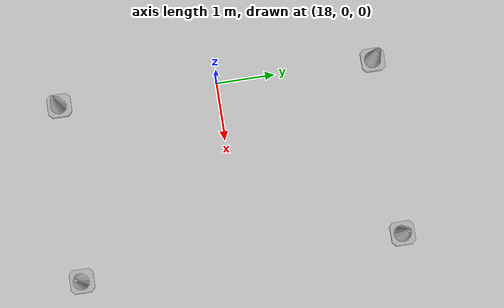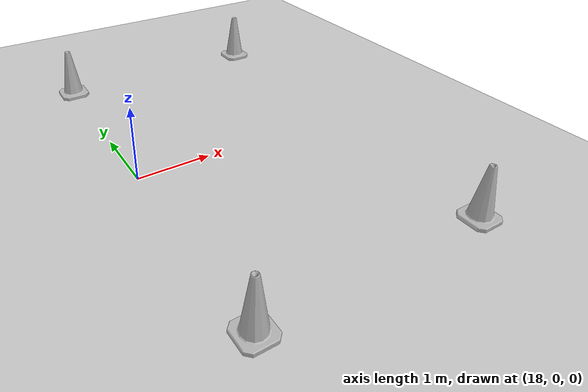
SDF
<sdf version="1.7">
 <world name="default">
  <model name="ground_plane">
   <static>1</static>
   <link name="link">
    <collision name="collision">
     <geometry><plane><normal>0 0 1</normal><size>100 100</size></plane></geometry>
     <surface>
      <contact><collide_bitmask>65535</collide_bitmask></contact>
      <friction><ode><mu>100</mu><mu2>50</mu2></ode></friction>
     </surface>
    </collision>
    <visual name="visual">
     <cast_shadows>0</cast_shadows>
     <geometry><plane><normal>0 0 1</normal><size>100 100</size></plane></geometry>
     <material>
      <script><uri>file://media/materials/scripts/gazebo.material</uri><name>Gazebo/Grey</name></script>
     </material>
    </visual>
   </link>
  </model>
  <model name="Construction_Cone_b_5">
   <link name="link">
    <inertial>
     <inertia><ixx>1</ixx><ixy>0</ixy><ixz>0</ixz><iyy>1</iyy><iyz>0</iyz><izz>1</izz></inertia>
     <mass>1</mass>
    </inertial>
    <visual name="visual">
     <geometry>
      <mesh><scale>8 8 6.7</scale><uri>./construction_cone/meshes/construction_cone_b.dae</uri></mesh>
     </geometry>
     <material><shader type="pixel"/></material>
    </visual>
    <collision name="collision">
     <geometry>
      <mesh><uri>./construction_cone/meshes/construction_cone_b.dae</uri><scale>8 8 6.7</scale></mesh>
     </geometry>
     <surface>
      <friction>
       <ode><mu>1</mu><mu2>1</mu2><fdir1>0 0 0</fdir1><slip1>0</slip1><slip2>0</slip2></ode>
       <torsional>
        <coefficient>1</coefficient>
        <patch_radius>0</patch_radius>
        <surface_radius>0</surface_radius>
        <use_patch_radius>1</use_patch_radius>
        <ode><slip>0</slip></ode>
       </torsional>
      </friction>
      <bounce><restitution_coefficient>0</restitution_coefficient><threshold>1e+06</threshold></bounce>
      <contact>
       <collide_without_contact>0</collide_without_contact>
       <collide_without_contact_bitmask>1</collide_without_contact_bitmask>
       <collide_bitmask>1</collide_bitmask>
       <ode>
        <soft_cfm>0</soft_cfm>
        <soft_erp>0.2</soft_erp>
        <kp>1e+13</kp>
        <kd>1</kd>
        <max_vel>0.01</max_vel>
        <min_depth>0</min_depth>
       </ode>
       <bullet>
        <split_impulse>1</split_impulse>
        <split_impulse_penetration_threshold>-0.01</split_impulse_penetration_threshold>
        <soft_cfm>0</soft_cfm>
        <soft_erp>0.2</soft_erp>
        <kp>1e+13</kp>
        <kd>1</kd>
       </bullet>
      </contact>
     </surface>
    </collision>
   </link>
   <static>0</static>
   <pose>18.0013 -2.70174 -0 0 -0 0</pose>
  </model>
  <model name="Construction_Cone_b_6">
   <link name="link">
    <inertial>
     <inertia><ixx>1</ixx><ixy>0</ixy><ixz>0</ixz><iyy>1</iyy><iyz>0</iyz><izz>1</izz></inertia>
     <mass>1</mass>
    </inertial>
    <visual name="visual">
     <geometry>
      <mesh><scale>8 8 6.7</scale><uri>./construction_cone/meshes/construction_cone_b.dae</uri></mesh>
     </geometry>
     <material><shader type="pixel"/></material>
    </visual>
    <collision name="collision">
     <geometry>
      <mesh><uri>./construction_cone/meshes/construction_cone_b.dae</uri><scale>8 8 6.7</scale></mesh>
     </geometry>
     <surface>
      <friction>
       <ode><mu>1</mu><mu2>1</mu2><fdir1>0 0 0</fdir1><slip1>0</slip1><slip2>0</slip2></ode>
       <torsional>
        <coefficient>1</coefficient>
        <patch_radius>0</patch_radius>
        <surface_radius>0</surface_radius>
        <use_patch_radius>1</use_patch_radius>
        <ode><slip>0</slip></ode>
       </torsional>
      </friction>
      <bounce><restitution_coefficient>0</restitution_coefficient><threshold>1e+06</threshold></bounce>
      <contact>
       <collide_without_contact>0</collide_without_contact>
       <collide_without_contact_bitmask>1</collide_without_contact_bitmask>
       <collide_bitmask>1</collide_bitmask>
       <ode>
        <soft_cfm>0</soft_cfm>
        <soft_erp>0.2</soft_erp>
        <kp>1e+13</kp>
        <kd>1</kd>
        <max_vel>0.01</max_vel>
        <min_depth>0</min_depth>
       </ode>
       <bullet>
        <split_impulse>1</split_impulse>
        <split_impulse_penetration_threshold>-0.01</split_impulse_penetration_threshold>
        <soft_cfm>0</soft_cfm>
        <soft_erp>0.2</soft_erp>
        <kp>1e+13</kp>
        <kd>1</kd>
       </bullet>
      </contact>
     </surface>
    </collision>
   </link>
   <static>0</static>
   <pose>20.9991 -2.7029 -0 0 -0 0</pose>
  </model>
  <model name="Construction_Cone_y_5">
   <link name="link">
    <inertial>
     <inertia><ixx>1</ixx><ixy>0</ixy><ixz>0</ixz><iyy>1</iyy><iyz>0</iyz><izz>1</izz></inertia>
     <mass>1</mass>
    </inertial>
    <visual name="visual">
     <geometry>
      <mesh><scale>8 8 6.7</scale><uri>./construction_cone/meshes/construction_cone_y.dae</uri></mesh>
     </geometry>
     <material><shader type="pixel"/></material>
    </visual>
    <collision name="collision">
     <geometry>
      <mesh><uri>./construction_cone/meshes/construction_cone_y.dae</uri><scale>8 8 6.7</scale></mesh>
     </geometry>
     <surface>
      <friction>
       <ode><mu>1</mu><mu2>1</mu2><fdir1>0 0 0</fdir1><slip1>0</slip1><slip2>0</slip2></ode>
       <torsional>
        <coefficient>1</coefficient>
        <patch_radius>0</patch_radius>
        <surface_radius>0</surface_radius>
        <use_patch_radius>1</use_patch_radius>
        <ode><slip>0</slip></ode>
       </torsional>
      </friction>
      <bounce><restitution_coefficient>0</restitution_coefficient><threshold>1e+06</threshold></bounce>
      <contact>
       <collide_without_contact>0</collide_without_contact>
       <collide_without_contact_bitmask>1</collide_without_contact_bitmask>
       <collide_bitmask>1</collide_bitmask>
       <ode>
        <soft_cfm>0</soft_cfm>
        <soft_erp>0.2</soft_erp>
        <kp>1e+13</kp>
        <kd>1</kd>
        <max_vel>0.01</max_vel>
        <min_depth>0</min_depth>
       </ode>
       <bullet>
        <split_impulse>1</split_impulse>
        <split_impulse_penetration_threshold>-0.01</split_impulse_penetration_threshold>
        <soft_cfm>0</soft_cfm>
        <soft_erp>0.2</soft_erp>
        <kp>1e+13</kp>
        <kd>1</kd>
       </bullet>
      </contact>
     </surface>
    </collision>
   </link>
   <static>0</static>
   <pose>18 2.70166 -0 0 -0 0</pose>
  </model>
  <model name="Construction_Cone_y_6">
   <link name="link">
    <inertial>
     <inertia><ixx>1</ixx><ixy>0</ixy><ixz>0</ixz><iyy>1</iyy><iyz>0</iyz><izz>1</izz></inertia>
     <mass>1</mass>
    </inertial>
    <visual name="visual">
     <geometry>
      <mesh><scale>8 8 6.7</scale><uri>./construction_cone/meshes/construction_cone_y.dae</uri></mesh>
     </geometry>
     <material><shader type="pixel"/></material>
    </visual>
    <collision name="collision">
     <geometry>
      <mesh><uri>./construction_cone/meshes/construction_cone_y.dae</uri><scale>8 8 6.7</scale></mesh>
     </geometry>
     <surface>
      <friction>
       <ode><mu>1</mu><mu2>1</mu2><fdir1>0 0 0</fdir1><slip1>0</slip1><slip2>0</slip2></ode>
       <torsional>
        <coefficient>1</coefficient>
        <patch_radius>0</patch_radius>
        <surface_radius>0</surface_radius>
        <use_patch_radius>1</use_patch_radius>
        <ode><slip>0</slip></ode>
       </torsional>
      </friction>
      <bounce><restitution_coefficient>0</restitution_coefficient><threshold>1e+06</threshold></bounce>
      <contact>
       <collide_without_contact>0</collide_without_contact>
       <collide_without_contact_bitmask>1</collide_without_contact_bitmask>
       <collide_bitmask>1</collide_bitmask>
       <ode>
        <soft_cfm>0</soft_cfm>
        <soft_erp>0.2</soft_erp>
        <kp>1e+13</kp>
        <kd>1</kd>
        <max_vel>0.01</max_vel>
        <min_depth>0</min_depth>
       </ode>
       <bullet>
        <split_impulse>1</split_impulse>
        <split_impulse_penetration_threshold>-0.01</split_impulse_penetration_threshold>
        <soft_cfm>0</soft_cfm>
        <soft_erp>0.2</soft_erp>
        <kp>1e+13</kp>
        <kd>1</kd>
       </bullet>
      </contact>
     </surface>
    </collision>
   </link>
   <static>0</static>
   <pose>21.0002 2.70456 -0 0 -0 0</pose>
  </model>
 </world>
</sdf>
